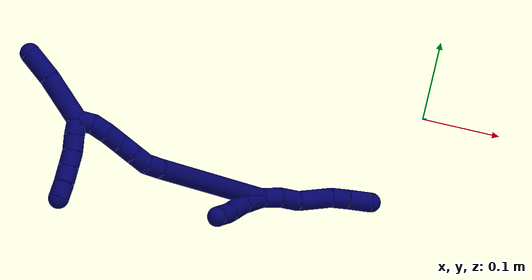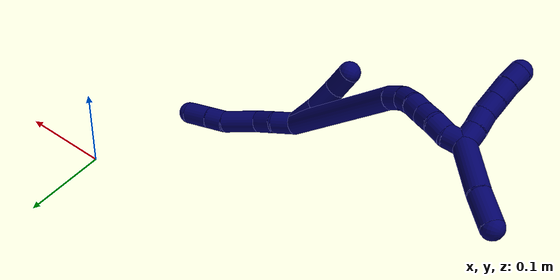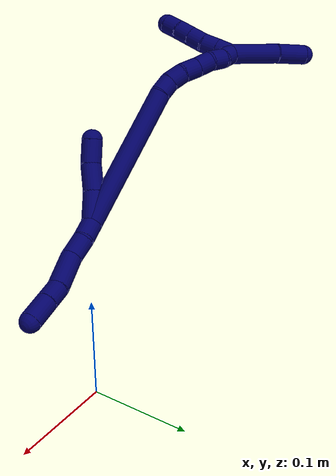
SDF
<sdf version="1.7">
 <world name="default">
  <model name="7">
   <static>0</static>
   <link name="7">
    <collision name="collision-cylinder-e_1_2_8">
     <pose>0.003698 0.001314 0.012469 -0.105006 0.286827 -0.015177</pose>
     <geometry><cylinder><radius>0.0125</radius><length>0.026143</length></cylinder></geometry>
     <surface>
      <friction><ode><mu>1.16</mu><mu2>1.16</mu2><slip1>0</slip1><slip2>0</slip2></ode></friction>
      <contact><ode><kp>1e+06</kp><kd>1</kd><max_vel>0</max_vel><min_depth>0.001</min_depth></ode></contact>
     </surface>
    </collision>
    <visual name="visual-cylinder-e_1_2_8">
     <pose>0.003698 0.001314 0.012469 -0.105006 0.286827 -0.015177</pose>
     <geometry><cylinder><radius>0.0125</radius><length>0.026143</length></cylinder></geometry>
     <material><ambient>0.003922 0 0.403922 1</ambient></material>
    </visual>
    <collision name="collision-cylinder-e_2_8_9">
     <pose>0.012278 0.000794 0.036952 0.151488 0.381937 0.02934</pose>
     <geometry><cylinder><radius>0.0125</radius><length>0.026195</length></cylinder></geometry>
     <surface>
      <friction><ode><mu>1.16</mu><mu2>1.16</mu2><slip1>0</slip1><slip2>0</slip2></ode></friction>
      <contact><ode><kp>1e+06</kp><kd>1</kd><max_vel>0</max_vel><min_depth>0.001</min_depth></ode></contact>
     </surface>
    </collision>
    <visual name="visual-cylinder-e_2_8_9">
     <pose>0.012278 0.000794 0.036952 0.151488 0.381937 0.02934</pose>
     <geometry><cylinder><radius>0.0125</radius><length>0.026195</length></cylinder></geometry>
     <material><ambient>0.003922 0 0.403922 1</ambient></material>
    </visual>
    <collision name="collision-cylinder-e_3_9_10">
     <pose>0.024235 0.002532 0.069878 -0.169163 0.321922 -0.02753</pose>
     <geometry><cylinder><radius>0.0125</radius><length>0.044727</length></cylinder></geometry>
     <surface>
      <friction><ode><mu>1.16</mu><mu2>1.16</mu2><slip1>0</slip1><slip2>0</slip2></ode></friction>
      <contact><ode><kp>1e+06</kp><kd>1</kd><max_vel>0</max_vel><min_depth>0.001</min_depth></ode></contact>
     </surface>
    </collision>
    <visual name="visual-cylinder-e_3_9_10">
     <pose>0.024235 0.002532 0.069878 -0.169163 0.321922 -0.02753</pose>
     <geometry><cylinder><radius>0.0125</radius><length>0.044727</length></cylinder></geometry>
     <material><ambient>0.003922 0 0.403922 1</ambient></material>
    </visual>
    <collision name="collision-cylinder-e_4_10_11">
     <pose>0.032959 0.006281 0.101835 -0.016107 0.148085 -0.001195</pose>
     <geometry><cylinder><radius>0.0125</radius><length>0.022337</length></cylinder></geometry>
     <surface>
      <friction><ode><mu>1.16</mu><mu2>1.16</mu2><slip1>0</slip1><slip2>0</slip2></ode></friction>
      <contact><ode><kp>1e+06</kp><kd>1</kd><max_vel>0</max_vel><min_depth>0.001</min_depth></ode></contact>
     </surface>
    </collision>
    <visual name="visual-cylinder-e_4_10_11">
     <pose>0.032959 0.006281 0.101835 -0.016107 0.148085 -0.001195</pose>
     <geometry><cylinder><radius>0.0125</radius><length>0.022337</length></cylinder></geometry>
     <material><ambient>0.003922 0 0.403922 1</ambient></material>
    </visual>
    <collision name="collision-cylinder-e_5_11_6">
     <pose>0.03722 0.006196 0.127952 0.017442 0.171674 0.001501</pose>
     <geometry><cylinder><radius>0.0125</radius><length>0.030597</length></cylinder></geometry>
     <surface>
      <friction><ode><mu>1.16</mu><mu2>1.16</mu2><slip1>0</slip1><slip2>0</slip2></ode></friction>
      <contact><ode><kp>1e+06</kp><kd>1</kd><max_vel>0</max_vel><min_depth>0.001</min_depth></ode></contact>
     </surface>
    </collision>
    <visual name="visual-cylinder-e_5_11_6">
     <pose>0.03722 0.006196 0.127952 0.017442 0.171674 0.001501</pose>
     <geometry><cylinder><radius>0.0125</radius><length>0.030597</length></cylinder></geometry>
     <material><ambient>0.003922 0 0.403922 1</ambient></material>
    </visual>
    <collision name="collision-cylinder-e_1_2_12">
     <pose>-0.014515 -0.00156 -0.011779 3.00994 -0.884843 -2.86506</pose>
     <geometry><cylinder><radius>0.0125</radius><length>0.037515</length></cylinder></geometry>
     <surface>
      <friction><ode><mu>1.16</mu><mu2>1.16</mu2><slip1>0</slip1><slip2>0</slip2></ode></friction>
      <contact><ode><kp>1e+06</kp><kd>1</kd><max_vel>0</max_vel><min_depth>0.001</min_depth></ode></contact>
     </surface>
    </collision>
    <visual name="visual-cylinder-e_1_2_12">
     <pose>-0.014515 -0.00156 -0.011779 3.00994 -0.884843 -2.86506</pose>
     <geometry><cylinder><radius>0.0125</radius><length>0.037515</length></cylinder></geometry>
     <material><ambient>0.003922 0 0.403922 1</ambient></material>
    </visual>
    <collision name="collision-cylinder-e_2_12_13">
     <pose>-0.043185 -0.005708 -0.032201 2.85068 -1.00327 -2.61956</pose>
     <geometry><cylinder><radius>0.0125</radius><length>0.033572</length></cylinder></geometry>
     <surface>
      <friction><ode><mu>1.16</mu><mu2>1.16</mu2><slip1>0</slip1><slip2>0</slip2></ode></friction>
      <contact><ode><kp>1e+06</kp><kd>1</kd><max_vel>0</max_vel><min_depth>0.001</min_depth></ode></contact>
     </surface>
    </collision>
    <visual name="visual-cylinder-e_2_12_13">
     <pose>-0.043185 -0.005708 -0.032201 2.85068 -1.00327 -2.61956</pose>
     <geometry><cylinder><radius>0.0125</radius><length>0.033572</length></cylinder></geometry>
     <material><ambient>0.003922 0 0.403922 1</ambient></material>
    </visual>
    <collision name="collision-cylinder-e_3_13_5">
     <pose>-0.069712 -0.007891 -0.04831 -3.08745 -1.02729 3.04566</pose>
     <geometry><cylinder><radius>0.0125</radius><length>0.028913</length></cylinder></geometry>
     <surface>
      <friction><ode><mu>1.16</mu><mu2>1.16</mu2><slip1>0</slip1><slip2>0</slip2></ode></friction>
      <contact><ode><kp>1e+06</kp><kd>1</kd><max_vel>0</max_vel><min_depth>0.001</min_depth></ode></contact>
     </surface>
    </collision>
    <visual name="visual-cylinder-e_3_13_5">
     <pose>-0.069712 -0.007891 -0.04831 -3.08745 -1.02729 3.04566</pose>
     <geometry><cylinder><radius>0.0125</radius><length>0.028913</length></cylinder></geometry>
     <material><ambient>0.003922 0 0.403922 1</ambient></material>
    </visual>
    <collision name="collision-cylinder-e_1_2_14">
     <pose>-0.051414 0.023789 -0.068794 -2.80866 -0.614961 2.16826</pose>
     <geometry><cylinder><radius>0.0125</radius><length>0.178235</length></cylinder></geometry>
     <surface>
      <friction><ode><mu>1.16</mu><mu2>1.16</mu2><slip1>0</slip1><slip2>0</slip2></ode></friction>
      <contact><ode><kp>1e+06</kp><kd>1</kd><max_vel>0</max_vel><min_depth>0.001</min_depth></ode></contact>
     </surface>
    </collision>
    <visual name="visual-cylinder-e_1_2_14">
     <pose>-0.051414 0.023789 -0.068794 -2.80866 -0.614961 2.16826</pose>
     <geometry><cylinder><radius>0.0125</radius><length>0.178235</length></cylinder></geometry>
     <material><ambient>0.003922 0 0.403922 1</ambient></material>
    </visual>
    <collision name="collision-cylinder-e_2_14_15">
     <pose>-0.106823 0.050348 -0.146434 -2.83815 -0.406832 1.86584</pose>
     <geometry><cylinder><radius>0.0125</radius><length>0.020188</length></cylinder></geometry>
     <surface>
      <friction><ode><mu>1.16</mu><mu2>1.16</mu2><slip1>0</slip1><slip2>0</slip2></ode></friction>
      <contact><ode><kp>1e+06</kp><kd>1</kd><max_vel>0</max_vel><min_depth>0.001</min_depth></ode></contact>
     </surface>
    </collision>
    <visual name="visual-cylinder-e_2_14_15">
     <pose>-0.106823 0.050348 -0.146434 -2.83815 -0.406832 1.86584</pose>
     <geometry><cylinder><radius>0.0125</radius><length>0.020188</length></cylinder></geometry>
     <material><ambient>0.003922 0 0.403922 1</ambient></material>
    </visual>
    <collision name="collision-cylinder-e_3_15_16">
     <pose>-0.112824 0.058587 -0.163902 -2.57634 -0.194114 0.646983</pose>
     <geometry><cylinder><radius>0.0125</radius><length>0.020809</length></cylinder></geometry>
     <surface>
      <friction><ode><mu>1.16</mu><mu2>1.16</mu2><slip1>0</slip1><slip2>0</slip2></ode></friction>
      <contact><ode><kp>1e+06</kp><kd>1</kd><max_vel>0</max_vel><min_depth>0.001</min_depth></ode></contact>
     </surface>
    </collision>
    <visual name="visual-cylinder-e_3_15_16">
     <pose>-0.112824 0.058587 -0.163902 -2.57634 -0.194114 0.646983</pose>
     <geometry><cylinder><radius>0.0125</radius><length>0.020809</length></cylinder></geometry>
     <material><ambient>0.003922 0 0.403922 1</ambient></material>
    </visual>
    <collision name="collision-cylinder-e_4_16_17">
     <pose>-0.114605 0.069172 -0.181481 -2.62257 0.021877 -0.082355</pose>
     <geometry><cylinder><radius>0.0125</radius><length>0.020638</length></cylinder></geometry>
     <surface>
      <friction><ode><mu>1.16</mu><mu2>1.16</mu2><slip1>0</slip1><slip2>0</slip2></ode></friction>
      <contact><ode><kp>1e+06</kp><kd>1</kd><max_vel>0</max_vel><min_depth>0.001</min_depth></ode></contact>
     </surface>
    </collision>
    <visual name="visual-cylinder-e_4_16_17">
     <pose>-0.114605 0.069172 -0.181481 -2.62257 0.021877 -0.082355</pose>
     <geometry><cylinder><radius>0.0125</radius><length>0.020638</length></cylinder></geometry>
     <material><ambient>0.003922 0 0.403922 1</ambient></material>
    </visual>
    <collision name="collision-cylinder-e_5_17_18">
     <pose>-0.114821 0.07935 -0.199127 -2.61422 -0.043848 0.162087</pose>
     <geometry><cylinder><radius>0.0125</radius><length>0.020129</length></cylinder></geometry>
     <surface>
      <friction><ode><mu>1.16</mu><mu2>1.16</mu2><slip1>0</slip1><slip2>0</slip2></ode></friction>
      <contact><ode><kp>1e+06</kp><kd>1</kd><max_vel>0</max_vel><min_depth>0.001</min_depth></ode></contact>
     </surface>
    </collision>
    <visual name="visual-cylinder-e_5_17_18">
     <pose>-0.114821 0.07935 -0.199127 -2.61422 -0.043848 0.162087</pose>
     <geometry><cylinder><radius>0.0125</radius><length>0.020129</length></cylinder></geometry>
     <material><ambient>0.003922 0 0.403922 1</ambient></material>
    </visual>
    <collision name="collision-cylinder-e_6_18_19">
     <pose>-0.113259 0.087999 -0.216932 -2.7665 0.201697 -0.979733</pose>
     <geometry><cylinder><radius>0.0125</radius><length>0.02</length></cylinder></geometry>
     <surface>
      <friction><ode><mu>1.16</mu><mu2>1.16</mu2><slip1>0</slip1><slip2>0</slip2></ode></friction>
      <contact><ode><kp>1e+06</kp><kd>1</kd><max_vel>0</max_vel><min_depth>0.001</min_depth></ode></contact>
     </surface>
    </collision>
    <visual name="visual-cylinder-e_6_18_19">
     <pose>-0.113259 0.087999 -0.216932 -2.7665 0.201697 -0.979733</pose>
     <geometry><cylinder><radius>0.0125</radius><length>0.02</length></cylinder></geometry>
     <material><ambient>0.003922 0 0.403922 1</ambient></material>
    </visual>
    <collision name="collision-cylinder-e_7_19_1">
     <pose>-0.110728 0.092365 -0.236005 -3.0638 0.052795 -1.19226</pose>
     <geometry><cylinder><radius>0.0125</radius><length>0.020001</length></cylinder></geometry>
     <surface>
      <friction><ode><mu>1.16</mu><mu2>1.16</mu2><slip1>0</slip1><slip2>0</slip2></ode></friction>
      <contact><ode><kp>1e+06</kp><kd>1</kd><max_vel>0</max_vel><min_depth>0.001</min_depth></ode></contact>
     </surface>
    </collision>
    <visual name="visual-cylinder-e_7_19_1">
     <pose>-0.110728 0.092365 -0.236005 -3.0638 0.052795 -1.19226</pose>
     <geometry><cylinder><radius>0.0125</radius><length>0.020001</length></cylinder></geometry>
     <material><ambient>0.003922 0 0.403922 1</ambient></material>
    </visual>
    <collision name="collision-cylinder-e_1_1_20">
     <pose>-0.115055 0.084404 -0.246254 1.60436 -0.50698 -0.523519</pose>
     <geometry><cylinder><radius>0.0125</radius><length>0.02</length></cylinder></geometry>
     <surface>
      <friction><ode><mu>1.16</mu><mu2>1.16</mu2><slip1>0</slip1><slip2>0</slip2></ode></friction>
      <contact><ode><kp>1e+06</kp><kd>1</kd><max_vel>0</max_vel><min_depth>0.001</min_depth></ode></contact>
     </surface>
    </collision>
    <visual name="visual-cylinder-e_1_1_20">
     <pose>-0.115055 0.084404 -0.246254 1.60436 -0.50698 -0.523519</pose>
     <geometry><cylinder><radius>0.0125</radius><length>0.02</length></cylinder></geometry>
     <material><ambient>0.003922 0 0.403922 1</ambient></material>
    </visual>
    <collision name="collision-cylinder-e_2_20_21">
     <pose>-0.124858 0.066996 -0.245952 1.50226 -0.517532 -0.484596</pose>
     <geometry><cylinder><radius>0.0125</radius><length>0.02</length></cylinder></geometry>
     <surface>
      <friction><ode><mu>1.16</mu><mu2>1.16</mu2><slip1>0</slip1><slip2>0</slip2></ode></friction>
      <contact><ode><kp>1e+06</kp><kd>1</kd><max_vel>0</max_vel><min_depth>0.001</min_depth></ode></contact>
     </surface>
    </collision>
    <visual name="visual-cylinder-e_2_20_21">
     <pose>-0.124858 0.066996 -0.245952 1.50226 -0.517532 -0.484596</pose>
     <geometry><cylinder><radius>0.0125</radius><length>0.02</length></cylinder></geometry>
     <material><ambient>0.003922 0 0.403922 1</ambient></material>
    </visual>
    <collision name="collision-cylinder-e_3_21_22">
     <pose>-0.135129 0.049928 -0.246415 1.69606 -0.561415 -0.631904</pose>
     <geometry><cylinder><radius>0.0125</radius><length>0.02</length></cylinder></geometry>
     <surface>
      <friction><ode><mu>1.16</mu><mu2>1.16</mu2><slip1>0</slip1><slip2>0</slip2></ode></friction>
      <contact><ode><kp>1e+06</kp><kd>1</kd><max_vel>0</max_vel><min_depth>0.001</min_depth></ode></contact>
     </surface>
    </collision>
    <visual name="visual-cylinder-e_3_21_22">
     <pose>-0.135129 0.049928 -0.246415 1.69606 -0.561415 -0.631904</pose>
     <geometry><cylinder><radius>0.0125</radius><length>0.02</length></cylinder></geometry>
     <material><ambient>0.003922 0 0.403922 1</ambient></material>
    </visual>
    <collision name="collision-cylinder-e_4_22_23">
     <pose>-0.145804 0.033148 -0.248532 1.69655 -0.564626 -0.635761</pose>
     <geometry><cylinder><radius>0.0125</radius><length>0.02</length></cylinder></geometry>
     <surface>
      <friction><ode><mu>1.16</mu><mu2>1.16</mu2><slip1>0</slip1><slip2>0</slip2></ode></friction>
      <contact><ode><kp>1e+06</kp><kd>1</kd><max_vel>0</max_vel><min_depth>0.001</min_depth></ode></contact>
     </surface>
    </collision>
    <visual name="visual-cylinder-e_4_22_23">
     <pose>-0.145804 0.033148 -0.248532 1.69655 -0.564626 -0.635761</pose>
     <geometry><cylinder><radius>0.0125</radius><length>0.02</length></cylinder></geometry>
     <material><ambient>0.003922 0 0.403922 1</ambient></material>
    </visual>
    <collision name="collision-cylinder-e_5_23_4">
     <pose>-0.155876 0.016114 -0.251276 1.76302 -0.491679 -0.591085</pose>
     <geometry><cylinder><radius>0.0125</radius><length>0.02</length></cylinder></geometry>
     <surface>
      <friction><ode><mu>1.16</mu><mu2>1.16</mu2><slip1>0</slip1><slip2>0</slip2></ode></friction>
      <contact><ode><kp>1e+06</kp><kd>1</kd><max_vel>0</max_vel><min_depth>0.001</min_depth></ode></contact>
     </surface>
    </collision>
    <visual name="visual-cylinder-e_5_23_4">
     <pose>-0.155876 0.016114 -0.251276 1.76302 -0.491679 -0.591085</pose>
     <geometry><cylinder><radius>0.0125</radius><length>0.02</length></cylinder></geometry>
     <material><ambient>0.003922 0 0.403922 1</ambient></material>
    </visual>
    <collision name="collision-cylinder-e_1_1_24">
     <pose>-0.100736 0.113836 -0.266732 -2.35803 0.312209 -0.727949</pose>
     <geometry><cylinder><radius>0.0125</radius><length>0.061622</length></cylinder></geometry>
     <surface>
      <friction><ode><mu>1.16</mu><mu2>1.16</mu2><slip1>0</slip1><slip2>0</slip2></ode></friction>
      <contact><ode><kp>1e+06</kp><kd>1</kd><max_vel>0</max_vel><min_depth>0.001</min_depth></ode></contact>
     </surface>
    </collision>
    <visual name="visual-cylinder-e_1_1_24">
     <pose>-0.100736 0.113836 -0.266732 -2.35803 0.312209 -0.727949</pose>
     <geometry><cylinder><radius>0.0125</radius><length>0.061622</length></cylinder></geometry>
     <material><ambient>0.003922 0 0.403922 1</ambient></material>
    </visual>
    <collision name="collision-cylinder-e_2_24_3">
     <pose>-0.084212 0.14559 -0.301507 -2.47319 0.37678 -1.00426</pose>
     <geometry><cylinder><radius>0.0125</radius><length>0.038378</length></cylinder></geometry>
     <surface>
      <friction><ode><mu>1.16</mu><mu2>1.16</mu2><slip1>0</slip1><slip2>0</slip2></ode></friction>
      <contact><ode><kp>1e+06</kp><kd>1</kd><max_vel>0</max_vel><min_depth>0.001</min_depth></ode></contact>
     </surface>
    </collision>
    <visual name="visual-cylinder-e_2_24_3">
     <pose>-0.084212 0.14559 -0.301507 -2.47319 0.37678 -1.00426</pose>
     <geometry><cylinder><radius>0.0125</radius><length>0.038378</length></cylinder></geometry>
     <material><ambient>0.003922 0 0.403922 1</ambient></material>
    </visual>
    <collision name="collision-sphere-3">
     <pose>-0.077152 0.156647 -0.31551 0 -0 0</pose>
     <geometry><sphere><radius>0.0125</radius></sphere></geometry>
     <surface>
      <friction><ode><mu>1.16</mu><mu2>1.16</mu2><slip1>0</slip1><slip2>0</slip2></ode></friction>
      <contact><ode><kp>1e+06</kp><kd>1</kd><max_vel>0</max_vel><min_depth>0.001</min_depth></ode></contact>
     </surface>
    </collision>
    <visual name="visual-sphere-3">
     <pose>-0.077152 0.156647 -0.31551 0 -0 0</pose>
     <geometry><sphere><radius>0.0125</radius></sphere></geometry>
     <material><ambient>0.003922 0 0.403922 1</ambient></material>
    </visual>
    <collision name="collision-sphere-24">
     <pose>-0.091272 0.134532 -0.287504 0 -0 0</pose>
     <geometry><sphere><radius>0.0125</radius></sphere></geometry>
     <surface>
      <friction><ode><mu>1.16</mu><mu2>1.16</mu2><slip1>0</slip1><slip2>0</slip2></ode></friction>
      <contact><ode><kp>1e+06</kp><kd>1</kd><max_vel>0</max_vel><min_depth>0.001</min_depth></ode></contact>
     </surface>
    </collision>
    <visual name="visual-sphere-24">
     <pose>-0.091272 0.134532 -0.287504 0 -0 0</pose>
     <geometry><sphere><radius>0.0125</radius></sphere></geometry>
     <material><ambient>0.003922 0 0.403922 1</ambient></material>
    </visual>
    <collision name="collision-sphere-4">
     <pose>-0.160597 0.007461 -0.25296 0 -0 0</pose>
     <geometry><sphere><radius>0.0125</radius></sphere></geometry>
     <surface>
      <friction><ode><mu>1.16</mu><mu2>1.16</mu2><slip1>0</slip1><slip2>0</slip2></ode></friction>
      <contact><ode><kp>1e+06</kp><kd>1</kd><max_vel>0</max_vel><min_depth>0.001</min_depth></ode></contact>
     </surface>
    </collision>
    <visual name="visual-sphere-4">
     <pose>-0.160597 0.007461 -0.25296 0 -0 0</pose>
     <geometry><sphere><radius>0.0125</radius></sphere></geometry>
     <material><ambient>0.003922 0 0.403922 1</ambient></material>
    </visual>
    <collision name="collision-sphere-23">
     <pose>-0.151155 0.024767 -0.249592 0 -0 0</pose>
     <geometry><sphere><radius>0.0125</radius></sphere></geometry>
     <surface>
      <friction><ode><mu>1.16</mu><mu2>1.16</mu2><slip1>0</slip1><slip2>0</slip2></ode></friction>
      <contact><ode><kp>1e+06</kp><kd>1</kd><max_vel>0</max_vel><min_depth>0.001</min_depth></ode></contact>
     </surface>
    </collision>
    <visual name="visual-sphere-23">
     <pose>-0.151155 0.024767 -0.249592 0 -0 0</pose>
     <geometry><sphere><radius>0.0125</radius></sphere></geometry>
     <material><ambient>0.003922 0 0.403922 1</ambient></material>
    </visual>
    <collision name="collision-sphere-22">
     <pose>-0.140453 0.041529 -0.247472 0 -0 0</pose>
     <geometry><sphere><radius>0.0125</radius></sphere></geometry>
     <surface>
      <friction><ode><mu>1.16</mu><mu2>1.16</mu2><slip1>0</slip1><slip2>0</slip2></ode></friction>
      <contact><ode><kp>1e+06</kp><kd>1</kd><max_vel>0</max_vel><min_depth>0.001</min_depth></ode></contact>
     </surface>
    </collision>
    <visual name="visual-sphere-22">
     <pose>-0.140453 0.041529 -0.247472 0 -0 0</pose>
     <geometry><sphere><radius>0.0125</radius></sphere></geometry>
     <material><ambient>0.003922 0 0.403922 1</ambient></material>
    </visual>
    <collision name="collision-sphere-21">
     <pose>-0.129805 0.058326 -0.245357 0 -0 0</pose>
     <geometry><sphere><radius>0.0125</radius></sphere></geometry>
     <surface>
      <friction><ode><mu>1.16</mu><mu2>1.16</mu2><slip1>0</slip1><slip2>0</slip2></ode></friction>
      <contact><ode><kp>1e+06</kp><kd>1</kd><max_vel>0</max_vel><min_depth>0.001</min_depth></ode></contact>
     </surface>
    </collision>
    <visual name="visual-sphere-21">
     <pose>-0.129805 0.058326 -0.245357 0 -0 0</pose>
     <geometry><sphere><radius>0.0125</radius></sphere></geometry>
     <material><ambient>0.003922 0 0.403922 1</ambient></material>
    </visual>
    <collision name="collision-sphere-20">
     <pose>-0.119911 0.075666 -0.246548 0 -0 0</pose>
     <geometry><sphere><radius>0.0125</radius></sphere></geometry>
     <surface>
      <friction><ode><mu>1.16</mu><mu2>1.16</mu2><slip1>0</slip1><slip2>0</slip2></ode></friction>
      <contact><ode><kp>1e+06</kp><kd>1</kd><max_vel>0</max_vel><min_depth>0.001</min_depth></ode></contact>
     </surface>
    </collision>
    <visual name="visual-sphere-20">
     <pose>-0.119911 0.075666 -0.246548 0 -0 0</pose>
     <geometry><sphere><radius>0.0125</radius></sphere></geometry>
     <material><ambient>0.003922 0 0.403922 1</ambient></material>
    </visual>
    <collision name="collision-sphere-6">
     <pose>0.039834 0.005933 0.143023 0 -0 0</pose>
     <geometry><sphere><radius>0.0125</radius></sphere></geometry>
     <surface>
      <friction><ode><mu>1.16</mu><mu2>1.16</mu2><slip1>0</slip1><slip2>0</slip2></ode></friction>
      <contact><ode><kp>1e+06</kp><kd>1</kd><max_vel>0</max_vel><min_depth>0.001</min_depth></ode></contact>
     </surface>
    </collision>
    <visual name="visual-sphere-6">
     <pose>0.039834 0.005933 0.143023 0 -0 0</pose>
     <geometry><sphere><radius>0.0125</radius></sphere></geometry>
     <material><ambient>0.003922 0 0.403922 1</ambient></material>
    </visual>
    <collision name="collision-sphere-11">
     <pose>0.034607 0.006459 0.112881 0 -0 0</pose>
     <geometry><sphere><radius>0.0125</radius></sphere></geometry>
     <surface>
      <friction><ode><mu>1.16</mu><mu2>1.16</mu2><slip1>0</slip1><slip2>0</slip2></ode></friction>
      <contact><ode><kp>1e+06</kp><kd>1</kd><max_vel>0</max_vel><min_depth>0.001</min_depth></ode></contact>
     </surface>
    </collision>
    <visual name="visual-sphere-11">
     <pose>0.034607 0.006459 0.112881 0 -0 0</pose>
     <geometry><sphere><radius>0.0125</radius></sphere></geometry>
     <material><ambient>0.003922 0 0.403922 1</ambient></material>
    </visual>
    <collision name="collision-sphere-10">
     <pose>0.031311 0.006103 0.09079 0 -0 0</pose>
     <geometry><sphere><radius>0.0125</radius></sphere></geometry>
     <surface>
      <friction><ode><mu>1.16</mu><mu2>1.16</mu2><slip1>0</slip1><slip2>0</slip2></ode></friction>
      <contact><ode><kp>1e+06</kp><kd>1</kd><max_vel>0</max_vel><min_depth>0.001</min_depth></ode></contact>
     </surface>
    </collision>
    <visual name="visual-sphere-10">
     <pose>0.031311 0.006103 0.09079 0 -0 0</pose>
     <geometry><sphere><radius>0.0125</radius></sphere></geometry>
     <material><ambient>0.003922 0 0.403922 1</ambient></material>
    </visual>
    <collision name="collision-sphere-9">
     <pose>0.01716 -0.00104 0.048966 0 -0 0</pose>
     <geometry><sphere><radius>0.0125</radius></sphere></geometry>
     <surface>
      <friction><ode><mu>1.16</mu><mu2>1.16</mu2><slip1>0</slip1><slip2>0</slip2></ode></friction>
      <contact><ode><kp>1e+06</kp><kd>1</kd><max_vel>0</max_vel><min_depth>0.001</min_depth></ode></contact>
     </surface>
    </collision>
    <visual name="visual-sphere-9">
     <pose>0.01716 -0.00104 0.048966 0 -0 0</pose>
     <geometry><sphere><radius>0.0125</radius></sphere></geometry>
     <material><ambient>0.003922 0 0.403922 1</ambient></material>
    </visual>
    <collision name="collision-sphere-2">
     <geometry><sphere><radius>0.0125</radius></sphere></geometry>
     <surface>
      <friction><ode><mu>1.16</mu><mu2>1.16</mu2><slip1>0</slip1><slip2>0</slip2></ode></friction>
      <contact><ode><kp>1e+06</kp><kd>1</kd><max_vel>0</max_vel><min_depth>0.001</min_depth></ode></contact>
     </surface>
    </collision>
    <visual name="visual-sphere-2">
     <geometry><sphere><radius>0.0125</radius></sphere></geometry>
     <material><ambient>0.003922 0 0.403922 1</ambient></material>
    </visual>
    <collision name="collision-sphere-19">
     <pose>-0.111255 0.091589 -0.226048 0 -0 0</pose>
     <geometry><sphere><radius>0.0125</radius></sphere></geometry>
     <surface>
      <friction><ode><mu>1.16</mu><mu2>1.16</mu2><slip1>0</slip1><slip2>0</slip2></ode></friction>
      <contact><ode><kp>1e+06</kp><kd>1</kd><max_vel>0</max_vel><min_depth>0.001</min_depth></ode></contact>
     </surface>
    </collision>
    <visual name="visual-sphere-19">
     <pose>-0.111255 0.091589 -0.226048 0 -0 0</pose>
     <geometry><sphere><radius>0.0125</radius></sphere></geometry>
     <material><ambient>0.003922 0 0.403922 1</ambient></material>
    </visual>
    <collision name="collision-sphere-8">
     <pose>0.007396 0.002628 0.024937 0 -0 0</pose>
     <geometry><sphere><radius>0.0125</radius></sphere></geometry>
     <surface>
      <friction><ode><mu>1.16</mu><mu2>1.16</mu2><slip1>0</slip1><slip2>0</slip2></ode></friction>
      <contact><ode><kp>1e+06</kp><kd>1</kd><max_vel>0</max_vel><min_depth>0.001</min_depth></ode></contact>
     </surface>
    </collision>
    <visual name="visual-sphere-8">
     <pose>0.007396 0.002628 0.024937 0 -0 0</pose>
     <geometry><sphere><radius>0.0125</radius></sphere></geometry>
     <material><ambient>0.003922 0 0.403922 1</ambient></material>
    </visual>
    <collision name="collision-sphere-12">
     <pose>-0.02903 -0.003119 -0.023557 0 -0 0</pose>
     <geometry><sphere><radius>0.0125</radius></sphere></geometry>
     <surface>
      <friction><ode><mu>1.16</mu><mu2>1.16</mu2><slip1>0</slip1><slip2>0</slip2></ode></friction>
      <contact><ode><kp>1e+06</kp><kd>1</kd><max_vel>0</max_vel><min_depth>0.001</min_depth></ode></contact>
     </surface>
    </collision>
    <visual name="visual-sphere-12">
     <pose>-0.02903 -0.003119 -0.023557 0 -0 0</pose>
     <geometry><sphere><radius>0.0125</radius></sphere></geometry>
     <material><ambient>0.003922 0 0.403922 1</ambient></material>
    </visual>
    <collision name="collision-sphere-13">
     <pose>-0.057339 -0.008296 -0.040845 0 -0 0</pose>
     <geometry><sphere><radius>0.0125</radius></sphere></geometry>
     <surface>
      <friction><ode><mu>1.16</mu><mu2>1.16</mu2><slip1>0</slip1><slip2>0</slip2></ode></friction>
      <contact><ode><kp>1e+06</kp><kd>1</kd><max_vel>0</max_vel><min_depth>0.001</min_depth></ode></contact>
     </surface>
    </collision>
    <visual name="visual-sphere-13">
     <pose>-0.057339 -0.008296 -0.040845 0 -0 0</pose>
     <geometry><sphere><radius>0.0125</radius></sphere></geometry>
     <material><ambient>0.003922 0 0.403922 1</ambient></material>
    </visual>
    <collision name="collision-sphere-5">
     <pose>-0.082085 -0.007486 -0.055775 0 -0 0</pose>
     <geometry><sphere><radius>0.0125</radius></sphere></geometry>
     <surface>
      <friction><ode><mu>1.16</mu><mu2>1.16</mu2><slip1>0</slip1><slip2>0</slip2></ode></friction>
      <contact><ode><kp>1e+06</kp><kd>1</kd><max_vel>0</max_vel><min_depth>0.001</min_depth></ode></contact>
     </surface>
    </collision>
    <visual name="visual-sphere-5">
     <pose>-0.082085 -0.007486 -0.055775 0 -0 0</pose>
     <geometry><sphere><radius>0.0125</radius></sphere></geometry>
     <material><ambient>0.003922 0 0.403922 1</ambient></material>
    </visual>
    <collision name="collision-sphere-14">
     <pose>-0.102829 0.047578 -0.137587 0 -0 0</pose>
     <geometry><sphere><radius>0.0125</radius></sphere></geometry>
     <surface>
      <friction><ode><mu>1.16</mu><mu2>1.16</mu2><slip1>0</slip1><slip2>0</slip2></ode></friction>
      <contact><ode><kp>1e+06</kp><kd>1</kd><max_vel>0</max_vel><min_depth>0.001</min_depth></ode></contact>
     </surface>
    </collision>
    <visual name="visual-sphere-14">
     <pose>-0.102829 0.047578 -0.137587 0 -0 0</pose>
     <geometry><sphere><radius>0.0125</radius></sphere></geometry>
     <material><ambient>0.003922 0 0.403922 1</ambient></material>
    </visual>
    <collision name="collision-sphere-15">
     <pose>-0.110817 0.053119 -0.155281 0 -0 0</pose>
     <geometry><sphere><radius>0.0125</radius></sphere></geometry>
     <surface>
      <friction><ode><mu>1.16</mu><mu2>1.16</mu2><slip1>0</slip1><slip2>0</slip2></ode></friction>
      <contact><ode><kp>1e+06</kp><kd>1</kd><max_vel>0</max_vel><min_depth>0.001</min_depth></ode></contact>
     </surface>
    </collision>
    <visual name="visual-sphere-15">
     <pose>-0.110817 0.053119 -0.155281 0 -0 0</pose>
     <geometry><sphere><radius>0.0125</radius></sphere></geometry>
     <material><ambient>0.003922 0 0.403922 1</ambient></material>
    </visual>
    <collision name="collision-sphere-16">
     <pose>-0.114831 0.064055 -0.172523 0 -0 0</pose>
     <geometry><sphere><radius>0.0125</radius></sphere></geometry>
     <surface>
      <friction><ode><mu>1.16</mu><mu2>1.16</mu2><slip1>0</slip1><slip2>0</slip2></ode></friction>
      <contact><ode><kp>1e+06</kp><kd>1</kd><max_vel>0</max_vel><min_depth>0.001</min_depth></ode></contact>
     </surface>
    </collision>
    <visual name="visual-sphere-16">
     <pose>-0.114831 0.064055 -0.172523 0 -0 0</pose>
     <geometry><sphere><radius>0.0125</radius></sphere></geometry>
     <material><ambient>0.003922 0 0.403922 1</ambient></material>
    </visual>
    <collision name="collision-sphere-17">
     <pose>-0.11438 0.07429 -0.190439 0 -0 0</pose>
     <geometry><sphere><radius>0.0125</radius></sphere></geometry>
     <surface>
      <friction><ode><mu>1.16</mu><mu2>1.16</mu2><slip1>0</slip1><slip2>0</slip2></ode></friction>
      <contact><ode><kp>1e+06</kp><kd>1</kd><max_vel>0</max_vel><min_depth>0.001</min_depth></ode></contact>
     </surface>
    </collision>
    <visual name="visual-sphere-17">
     <pose>-0.11438 0.07429 -0.190439 0 -0 0</pose>
     <geometry><sphere><radius>0.0125</radius></sphere></geometry>
     <material><ambient>0.003922 0 0.403922 1</ambient></material>
    </visual>
    <collision name="collision-sphere-18">
     <pose>-0.115262 0.08441 -0.207816 0 -0 0</pose>
     <geometry><sphere><radius>0.0125</radius></sphere></geometry>
     <surface>
      <friction><ode><mu>1.16</mu><mu2>1.16</mu2><slip1>0</slip1><slip2>0</slip2></ode></friction>
      <contact><ode><kp>1e+06</kp><kd>1</kd><max_vel>0</max_vel><min_depth>0.001</min_depth></ode></contact>
     </surface>
    </collision>
    <visual name="visual-sphere-18">
     <pose>-0.115262 0.08441 -0.207816 0 -0 0</pose>
     <geometry><sphere><radius>0.0125</radius></sphere></geometry>
     <material><ambient>0.003922 0 0.403922 1</ambient></material>
    </visual>
    <collision name="collision-sphere-1">
     <pose>-0.1102 0.093141 -0.245961 0 -0 0</pose>
     <geometry><sphere><radius>0.0125</radius></sphere></geometry>
     <surface>
      <friction><ode><mu>1.16</mu><mu2>1.16</mu2><slip1>0</slip1><slip2>0</slip2></ode></friction>
      <contact><ode><kp>1e+06</kp><kd>1</kd><max_vel>0</max_vel><min_depth>0.001</min_depth></ode></contact>
     </surface>
    </collision>
    <visual name="visual-sphere-1">
     <pose>-0.1102 0.093141 -0.245961 0 -0 0</pose>
     <geometry><sphere><radius>0.0125</radius></sphere></geometry>
     <material><ambient>0.003922 0 0.403922 1</ambient></material>
    </visual>
    <inertial>
     <pose>-0.061908 0.040989 -0.107371 0 -0 0</pose>
     <mass>0.75</mass>
     <inertia>
      <ixx>0.000106</ixx>
      <ixy>0</ixy>
      <ixz>0</ixz>
      <iyy>0.000653</iyy>
      <iyz>0</iyz>
      <izz>0.000115</izz>
     </inertia>
    </inertial>
   </link>
   <pose>-0.179053 -0.144269 0.060979 1.86801 1.28328 1.91969</pose>
  </model>
 </world>
</sdf>
